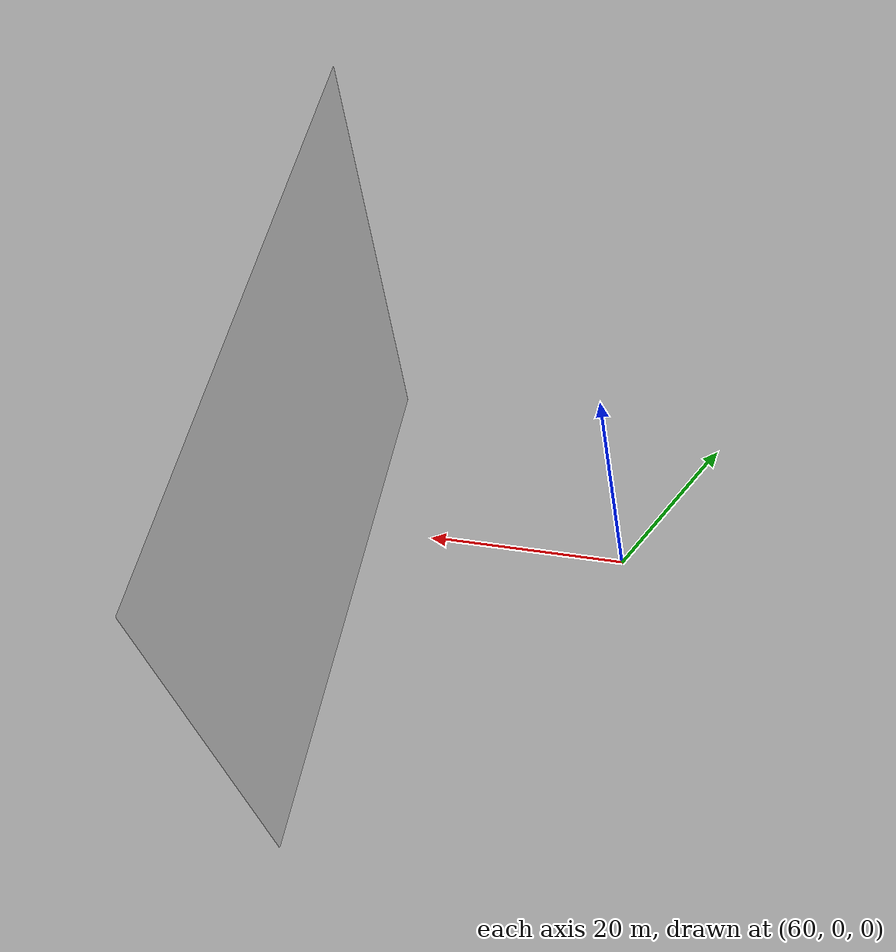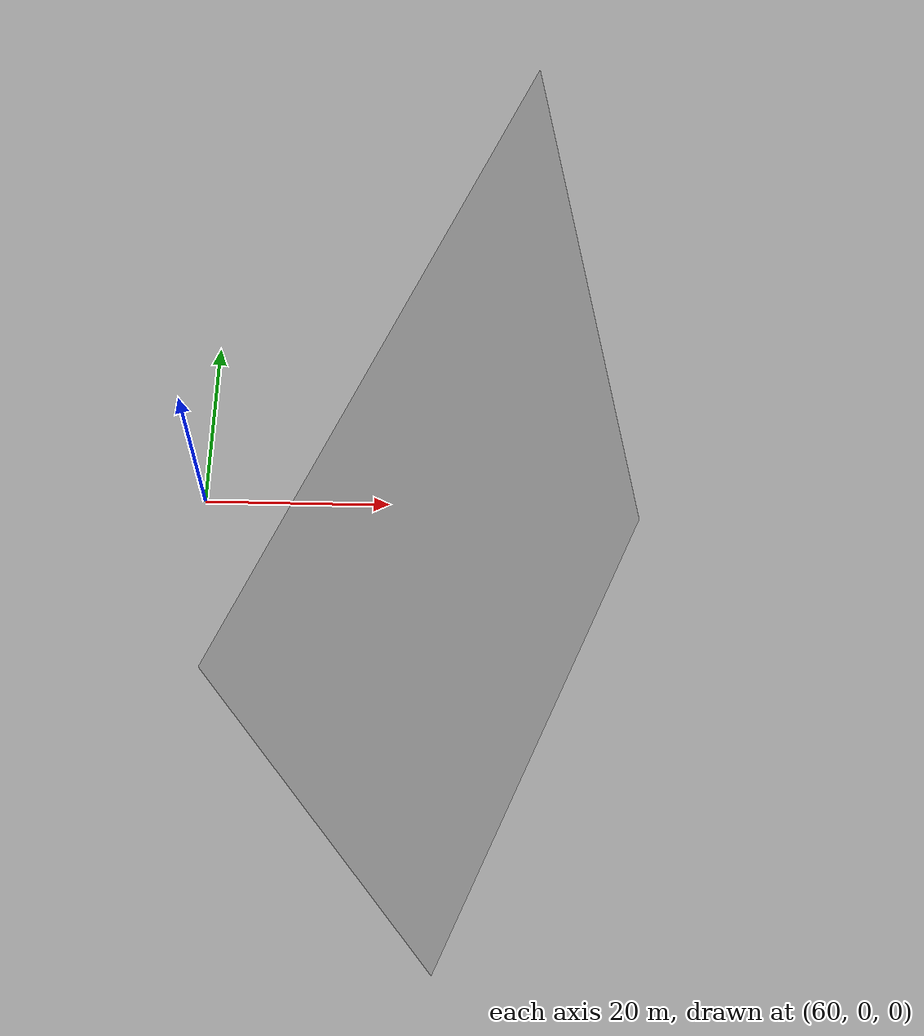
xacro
<robot name="robot">
  <link name="cottage_blender_light_1_link">
    <inertial>
      <origin xyz="0 0 0" rpy="0 0 0" />
      <mass value="1" />
      <inertia ixx="1" ixy="0" ixz="0" iyy="1" iyz="0" izz="1" />
    </inertial>
    <visual>
      <origin xyz="0 0 0" rpy="0 0 0" />
      <geometry>
        <mesh filename="package://simulation/meshes/cottage_blender_light_1.dae" />
      </geometry>
    </visual>
    <collision>
      <origin xyz="0 0 0" rpy="0 0 0" />
      <geometry>
        <mesh filename="package://simulation/meshes/cottage_blender_light_1.dae" />
      </geometry>
    </collision>
  </link>

  <gazebo reference="cottage_blender_light_1_link">
    <material>Checkerboard</material>
  </gazebo>

  <gazebo> <static>true</static></gazebo>
</robot>
